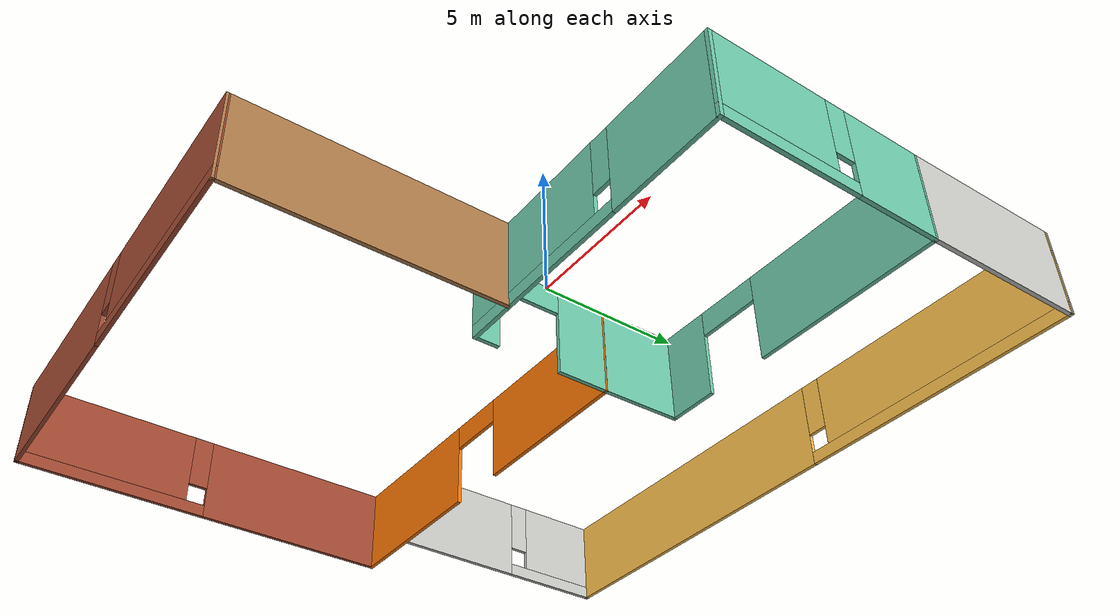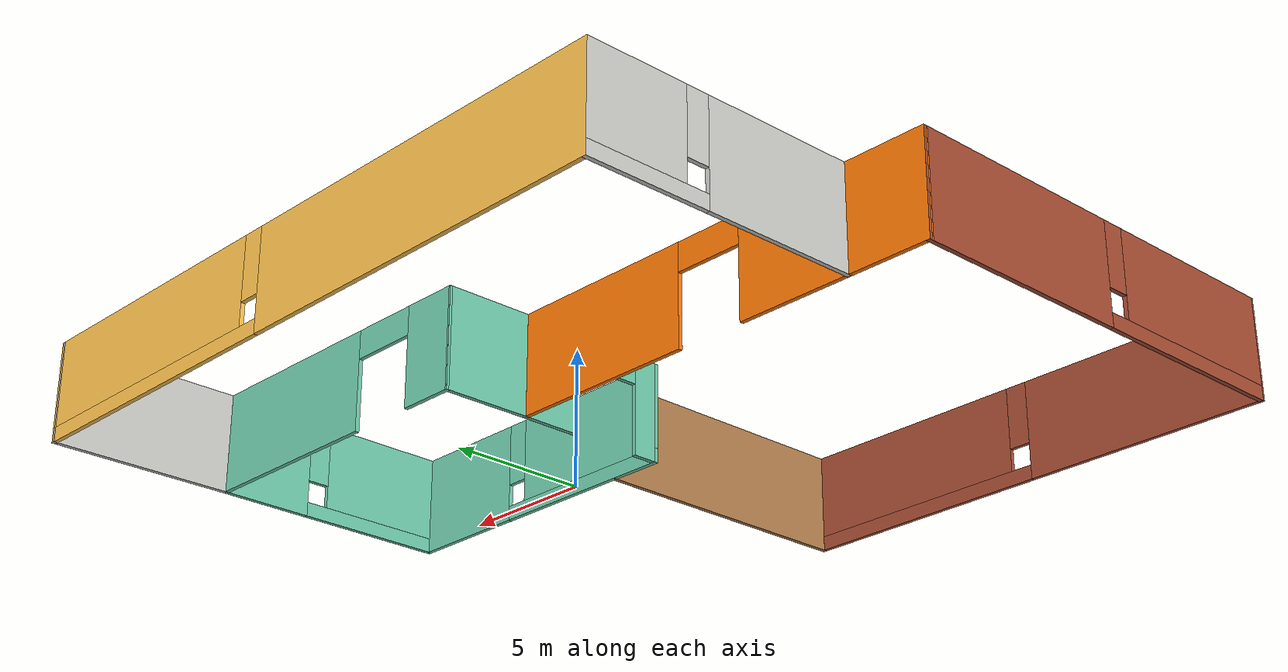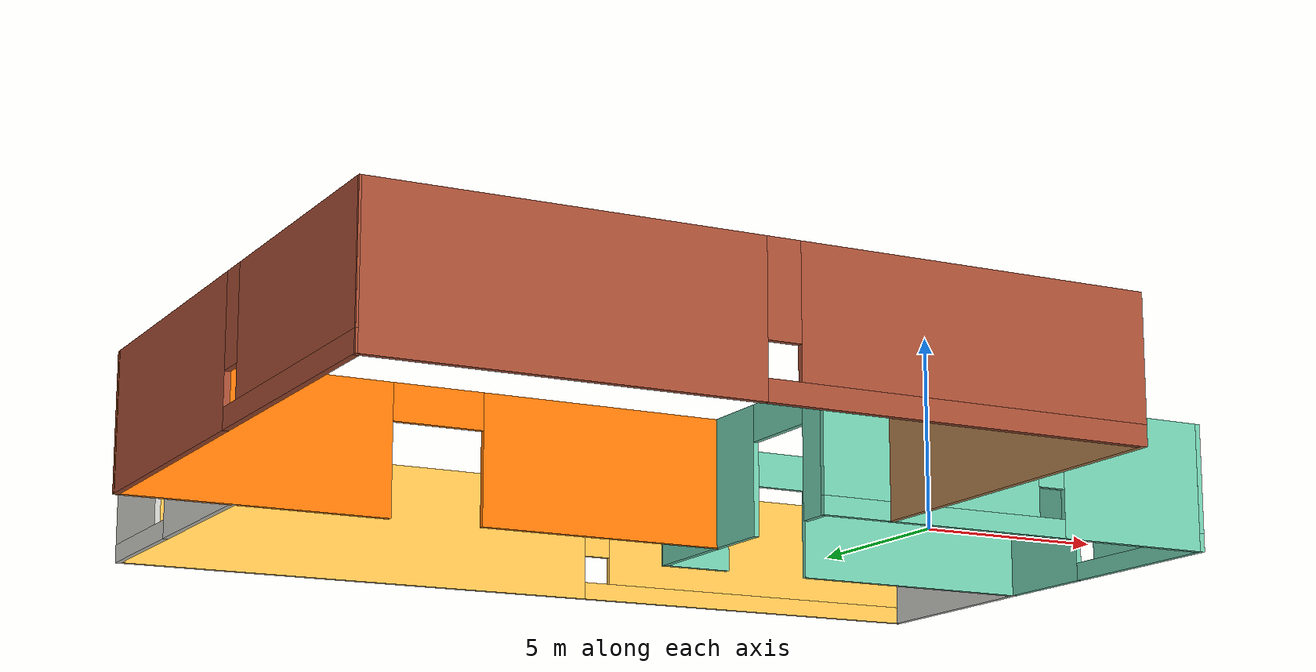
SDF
<?xml version='1.0'?>
<sdf version='1.6'>
  <model name='Building'>
    <pose frame=''>-5.64263 2.02782 0 0 -0 0</pose>
    <link name='Wall_11'>
      <pose frame=''>14.0376 1.85918 0 0 0 -1.5708</pose>
      <visual name='Wall_11_Visual_0'>
        <pose frame=''>-2.74243 0 1.75 0 -0 0</pose>
        <geometry>
          <box>
            <size>3.32963 0.15 3.5</size>
          </box>
        </geometry>
        <material>
          <script>
            <uri>file://media/materials/scripts/gazebo.material</uri>
            <name>Gazebo/Grey</name>
          </script>
          <ambient>0.435294 0.796078 0.67451 1</ambient>
        </material>
        <meta>
          <layer>0</layer>
        </meta>
      </visual>
      <collision name='Wall_11_Collision_0'>
        <geometry>
          <box>
            <size>3.32963 0.15 3.5</size>
          </box>
        </geometry>
        <pose frame=''>-2.74243 0 1.75 0 -0 0</pose>
      </collision>
      <visual name='Wall_11_Visual_1'>
        <pose frame=''>1.66481 0 0.25 0 -0 0</pose>
        <geometry>
          <box>
            <size>5.48487 0.15 0.5</size>
          </box>
        </geometry>
        <material>
          <script>
            <uri>file://media/materials/scripts/gazebo.material</uri>
            <name>Gazebo/Grey</name>
          </script>
          <ambient>0.435294 0.796078 0.67451 1</ambient>
        </material>
        <meta>
          <layer>0</layer>
        </meta>
      </visual>
      <collision name='Wall_11_Collision_1'>
        <geometry>
          <box>
            <size>5.48487 0.15 0.5</size>
          </box>
        </geometry>
        <pose frame=''>1.66481 0 0.25 0 -0 0</pose>
      </collision>
      <visual name='Wall_11_Visual_2'>
        <pose frame=''>2.06481 0 2 0 -0 0</pose>
        <geometry>
          <box>
            <size>4.68487 0.15 3</size>
          </box>
        </geometry>
        <material>
          <script>
            <uri>file://media/materials/scripts/gazebo.material</uri>
            <name>Gazebo/Grey</name>
          </script>
          <ambient>0.435294 0.796078 0.67451 1</ambient>
        </material>
        <meta>
          <layer>0</layer>
        </meta>
      </visual>
      <collision name='Wall_11_Collision_2'>
        <geometry>
          <box>
            <size>4.68487 0.15 3</size>
          </box>
        </geometry>
        <pose frame=''>2.06481 0 2 0 -0 0</pose>
      </collision>
      <visual name='Wall_11_Visual_3'>
        <pose frame=''>-0.677619 0 2.4 0 -0 0</pose>
        <geometry>
          <box>
            <size>0.8 0.15 2.2</size>
          </box>
        </geometry>
        <material>
          <script>
            <uri>file://media/materials/scripts/gazebo.material</uri>
            <name>Gazebo/Grey</name>
          </script>
          <ambient>0.435294 0.796078 0.67451 1</ambient>
        </material>
        <meta>
          <layer>0</layer>
        </meta>
      </visual>
      <collision name='Wall_11_Collision_3'>
        <geometry>
          <box>
            <size>0.8 0.15 2.2</size>
          </box>
        </geometry>
        <pose frame=''>-0.677619 0 2.4 0 -0 0</pose>
      </collision>
    </link>
    <link name='Wall_12'>
      <pose frame=''>8.15813 -2.47282 0 0 -0 3.14159</pose>
      <visual name='Wall_12_Visual_0'>
        <pose frame=''>-3.67134 0 1.75 0 -0 0</pose>
        <geometry>
          <box>
            <size>4.56647 0.15 3.5</size>
          </box>
        </geometry>
        <material>
          <script>
            <uri>file://media/materials/scripts/gazebo.material</uri>
            <name>Gazebo/Grey</name>
          </script>
          <ambient>0.435294 0.796078 0.67451 1</ambient>
        </material>
        <meta>
          <layer>0</layer>
        </meta>
      </visual>
      <collision name='Wall_12_Collision_0'>
        <geometry>
          <box>
            <size>4.56647 0.15 3.5</size>
          </box>
        </geometry>
        <pose frame=''>-3.67134 0 1.75 0 -0 0</pose>
      </collision>
      <visual name='Wall_12_Visual_1'>
        <pose frame=''>2.28324 0 0.25 0 -0 0</pose>
        <geometry>
          <box>
            <size>7.34269 0.15 0.5</size>
          </box>
        </geometry>
        <material>
          <script>
            <uri>file://media/materials/scripts/gazebo.material</uri>
            <name>Gazebo/Grey</name>
          </script>
          <ambient>0.435294 0.796078 0.67451 1</ambient>
        </material>
        <meta>
          <layer>0</layer>
        </meta>
      </visual>
      <collision name='Wall_12_Collision_1'>
        <geometry>
          <box>
            <size>7.34269 0.15 0.5</size>
          </box>
        </geometry>
        <pose frame=''>2.28324 0 0.25 0 -0 0</pose>
      </collision>
      <visual name='Wall_12_Visual_2'>
        <pose frame=''>2.68324 0 2 0 -0 0</pose>
        <geometry>
          <box>
            <size>6.54269 0.15 3</size>
          </box>
        </geometry>
        <material>
          <script>
            <uri>file://media/materials/scripts/gazebo.material</uri>
            <name>Gazebo/Grey</name>
          </script>
          <ambient>0.435294 0.796078 0.67451 1</ambient>
        </material>
        <meta>
          <layer>0</layer>
        </meta>
      </visual>
      <collision name='Wall_12_Collision_2'>
        <geometry>
          <box>
            <size>6.54269 0.15 3</size>
          </box>
        </geometry>
        <pose frame=''>2.68324 0 2 0 -0 0</pose>
      </collision>
      <visual name='Wall_12_Visual_3'>
        <pose frame=''>-0.988107 0 2.4 0 -0 0</pose>
        <geometry>
          <box>
            <size>0.8 0.15 2.2</size>
          </box>
        </geometry>
        <material>
          <script>
            <uri>file://media/materials/scripts/gazebo.material</uri>
            <name>Gazebo/Grey</name>
          </script>
          <ambient>0.435294 0.796078 0.67451 1</ambient>
        </material>
        <meta>
          <layer>0</layer>
        </meta>
      </visual>
      <collision name='Wall_12_Collision_3'>
        <geometry>
          <box>
            <size>0.8 0.15 2.2</size>
          </box>
        </geometry>
        <pose frame=''>-0.988107 0 2.4 0 -0 0</pose>
      </collision>
    </link>
    <link name='Wall_14'>
      <collision name='Wall_14_Collision'>
        <geometry>
          <box>
            <size>10.2635 0.15 3.5</size>
          </box>
        </geometry>
        <pose frame=''>0 0 1.75 0 -0 0</pose>
      </collision>
      <visual name='Wall_14_Visual'>
        <pose frame=''>0 0 1.75 0 -0 0</pose>
        <geometry>
          <box>
            <size>10.2635 0.15 3.5</size>
          </box>
        </geometry>
        <material>
          <script>
            <uri>file://media/materials/scripts/gazebo.material</uri>
            <name>Gazebo/Wood</name>
          </script>
          <ambient>0.996078 0.47451 0.0196078 1</ambient>
        </material>
        <meta>
          <layer>0</layer>
        </meta>
      </visual>
      <pose frame=''>4.22413 -7.58082 0 0 0 -1.57248</pose>
    </link>
    <link name='Wall_16'>
      <pose frame=''>-14.0979 -4.78882 0 0 0 -1.56739</pose>
      <visual name='Wall_16_Visual_0'>
        <pose frame=''>-3.8228 0 1.75 0 -0 0</pose>
        <geometry>
          <box>
            <size>8.0561 0.15 3.5</size>
          </box>
        </geometry>
        <material>
          <script>
            <uri>file://media/materials/scripts/gazebo.material</uri>
            <name>Gazebo/Bricks</name>
          </script>
          <ambient>0.996078 0.47451 0.0196078 1</ambient>
        </material>
        <meta>
          <layer>0</layer>
        </meta>
      </visual>
      <collision name='Wall_16_Collision_0'>
        <geometry>
          <box>
            <size>8.0561 0.15 3.5</size>
          </box>
        </geometry>
        <pose frame=''>-3.8228 0 1.75 0 -0 0</pose>
      </collision>
      <visual name='Wall_16_Visual_1'>
        <pose frame=''>4.02805 0 0.25 0 -0 0</pose>
        <geometry>
          <box>
            <size>7.6456 0.15 0.5</size>
          </box>
        </geometry>
        <material>
          <script>
            <uri>file://media/materials/scripts/gazebo.material</uri>
            <name>Gazebo/Bricks</name>
          </script>
          <ambient>0.996078 0.47451 0.0196078 1</ambient>
        </material>
        <meta>
          <layer>0</layer>
        </meta>
      </visual>
      <collision name='Wall_16_Collision_1'>
        <geometry>
          <box>
            <size>7.6456 0.15 0.5</size>
          </box>
        </geometry>
        <pose frame=''>4.02805 0 0.25 0 -0 0</pose>
      </collision>
      <visual name='Wall_16_Visual_2'>
        <pose frame=''>4.42805 0 2 0 -0 0</pose>
        <geometry>
          <box>
            <size>6.8456 0.15 3</size>
          </box>
        </geometry>
        <material>
          <script>
            <uri>file://media/materials/scripts/gazebo.material</uri>
            <name>Gazebo/Bricks</name>
          </script>
          <ambient>0.996078 0.47451 0.0196078 1</ambient>
        </material>
        <meta>
          <layer>0</layer>
        </meta>
      </visual>
      <collision name='Wall_16_Collision_2'>
        <geometry>
          <box>
            <size>6.8456 0.15 3</size>
          </box>
        </geometry>
        <pose frame=''>4.42805 0 2 0 -0 0</pose>
      </collision>
      <visual name='Wall_16_Visual_3'>
        <pose frame=''>0.605252 0 2.4 0 -0 0</pose>
        <geometry>
          <box>
            <size>0.8 0.15 2.2</size>
          </box>
        </geometry>
        <material>
          <script>
            <uri>file://media/materials/scripts/gazebo.material</uri>
            <name>Gazebo/Bricks</name>
          </script>
          <ambient>0.996078 0.47451 0.0196078 1</ambient>
        </material>
        <meta>
          <layer>0</layer>
        </meta>
      </visual>
      <collision name='Wall_16_Collision_3'>
        <geometry>
          <box>
            <size>0.8 0.15 2.2</size>
          </box>
        </geometry>
        <pose frame=''>0.605252 0 2.4 0 -0 0</pose>
      </collision>
    </link>
    <link name='Wall_17'>
      <pose frame=''>-4.92787 -12.6013 0 0 0 -0.003992</pose>
      <visual name='Wall_17_Visual_0'>
        <pose frame=''>-4.76402 0 1.75 0 -0 0</pose>
        <geometry>
          <box>
            <size>8.909 0.15 3.5</size>
          </box>
        </geometry>
        <material>
          <script>
            <uri>file://media/materials/scripts/gazebo.material</uri>
            <name>Gazebo/Bricks</name>
          </script>
          <ambient>0.996078 0.47451 0.0196078 1</ambient>
        </material>
        <meta>
          <layer>0</layer>
        </meta>
      </visual>
      <collision name='Wall_17_Collision_0'>
        <geometry>
          <box>
            <size>8.909 0.15 3.5</size>
          </box>
        </geometry>
        <pose frame=''>-4.76402 0 1.75 0 -0 0</pose>
      </collision>
      <visual name='Wall_17_Visual_1'>
        <pose frame=''>4.4545 0 0.25 0 -0 0</pose>
        <geometry>
          <box>
            <size>9.52804 0.15 0.5</size>
          </box>
        </geometry>
        <material>
          <script>
            <uri>file://media/materials/scripts/gazebo.material</uri>
            <name>Gazebo/Bricks</name>
          </script>
          <ambient>0.996078 0.47451 0.0196078 1</ambient>
        </material>
        <meta>
          <layer>0</layer>
        </meta>
      </visual>
      <collision name='Wall_17_Collision_1'>
        <geometry>
          <box>
            <size>9.52804 0.15 0.5</size>
          </box>
        </geometry>
        <pose frame=''>4.4545 0 0.25 0 -0 0</pose>
      </collision>
      <visual name='Wall_17_Visual_2'>
        <pose frame=''>4.8545 0 2 0 -0 0</pose>
        <geometry>
          <box>
            <size>8.72804 0.15 3</size>
          </box>
        </geometry>
        <material>
          <script>
            <uri>file://media/materials/scripts/gazebo.material</uri>
            <name>Gazebo/Bricks</name>
          </script>
          <ambient>0.996078 0.47451 0.0196078 1</ambient>
        </material>
        <meta>
          <layer>0</layer>
        </meta>
      </visual>
      <collision name='Wall_17_Collision_2'>
        <geometry>
          <box>
            <size>8.72804 0.15 3</size>
          </box>
        </geometry>
        <pose frame=''>4.8545 0 2 0 -0 0</pose>
      </collision>
      <visual name='Wall_17_Visual_3'>
        <pose frame=''>0.090482 0 2.4 0 -0 0</pose>
        <geometry>
          <box>
            <size>0.8 0.15 2.2</size>
          </box>
        </geometry>
        <material>
          <script>
            <uri>file://media/materials/scripts/gazebo.material</uri>
            <name>Gazebo/Bricks</name>
          </script>
          <ambient>0.996078 0.47451 0.0196078 1</ambient>
        </material>
        <meta>
          <layer>0</layer>
        </meta>
      </visual>
      <collision name='Wall_17_Collision_3'>
        <geometry>
          <box>
            <size>0.8 0.15 2.2</size>
          </box>
        </geometry>
        <pose frame=''>0.090482 0 2.4 0 -0 0</pose>
      </collision>
    </link>
    <link name='Wall_19'>
      <pose frame=''>-11.2264 7.83718 0 0 -0 1.5708</pose>
      <visual name='Wall_19_Visual_0'>
        <pose frame=''>-2.16282 0 1.75 0 -0 0</pose>
        <geometry>
          <box>
            <size>5.42436 0.15 3.5</size>
          </box>
        </geometry>
        <material>
          <script>
            <uri>file://media/materials/scripts/gazebo.material</uri>
            <name>Gazebo/CeilingTiled</name>
          </script>
          <ambient>1 0.764706 0.305882 1</ambient>
        </material>
        <meta>
          <layer>0</layer>
        </meta>
      </visual>
      <collision name='Wall_19_Collision_0'>
        <geometry>
          <box>
            <size>5.42436 0.15 3.5</size>
          </box>
        </geometry>
        <pose frame=''>-2.16282 0 1.75 0 -0 0</pose>
      </collision>
      <visual name='Wall_19_Visual_1'>
        <pose frame=''>2.71218 0 0.25 0 -0 0</pose>
        <geometry>
          <box>
            <size>4.32564 0.15 0.5</size>
          </box>
        </geometry>
        <material>
          <script>
            <uri>file://media/materials/scripts/gazebo.material</uri>
            <name>Gazebo/CeilingTiled</name>
          </script>
          <ambient>1 0.764706 0.305882 1</ambient>
        </material>
        <meta>
          <layer>0</layer>
        </meta>
      </visual>
      <collision name='Wall_19_Collision_1'>
        <geometry>
          <box>
            <size>4.32564 0.15 0.5</size>
          </box>
        </geometry>
        <pose frame=''>2.71218 0 0.25 0 -0 0</pose>
      </collision>
      <visual name='Wall_19_Visual_2'>
        <pose frame=''>3.11218 0 2 0 -0 0</pose>
        <geometry>
          <box>
            <size>3.52564 0.15 3</size>
          </box>
        </geometry>
        <material>
          <script>
            <uri>file://media/materials/scripts/gazebo.material</uri>
            <name>Gazebo/CeilingTiled</name>
          </script>
          <ambient>1 0.764706 0.305882 1</ambient>
        </material>
        <meta>
          <layer>0</layer>
        </meta>
      </visual>
      <collision name='Wall_19_Collision_2'>
        <geometry>
          <box>
            <size>3.52564 0.15 3</size>
          </box>
        </geometry>
        <pose frame=''>3.11218 0 2 0 -0 0</pose>
      </collision>
      <visual name='Wall_19_Visual_3'>
        <pose frame=''>0.949362 0 2.4 0 -0 0</pose>
        <geometry>
          <box>
            <size>0.8 0.15 2.2</size>
          </box>
        </geometry>
        <material>
          <script>
            <uri>file://media/materials/scripts/gazebo.material</uri>
            <name>Gazebo/CeilingTiled</name>
          </script>
          <ambient>1 0.764706 0.305882 1</ambient>
        </material>
        <meta>
          <layer>0</layer>
        </meta>
      </visual>
      <collision name='Wall_19_Collision_3'>
        <geometry>
          <box>
            <size>0.8 0.15 2.2</size>
          </box>
        </geometry>
        <pose frame=''>0.949362 0 2.4 0 -0 0</pose>
      </collision>
    </link>
    <link name='Wall_20'>
      <pose frame=''>1.44863 12.6372 0 0 -0 0</pose>
      <visual name='Wall_20_Visual_0'>
        <pose frame=''>-5.59643 0 1.75 0 -0 0</pose>
        <geometry>
          <box>
            <size>14.3071 0.15 3.5</size>
          </box>
        </geometry>
        <material>
          <script>
            <uri>file://media/materials/scripts/gazebo.material</uri>
            <name>Gazebo/Grey</name>
          </script>
          <ambient>1 0.764706 0.305882 1</ambient>
        </material>
        <meta>
          <layer>0</layer>
        </meta>
      </visual>
      <collision name='Wall_20_Collision_0'>
        <geometry>
          <box>
            <size>14.3071 0.15 3.5</size>
          </box>
        </geometry>
        <pose frame=''>-5.59643 0 1.75 0 -0 0</pose>
      </collision>
      <visual name='Wall_20_Visual_1'>
        <pose frame=''>7.15357 0 0.25 0 -0 0</pose>
        <geometry>
          <box>
            <size>11.1929 0.15 0.5</size>
          </box>
        </geometry>
        <material>
          <script>
            <uri>file://media/materials/scripts/gazebo.material</uri>
            <name>Gazebo/Grey</name>
          </script>
          <ambient>1 0.764706 0.305882 1</ambient>
        </material>
        <meta>
          <layer>0</layer>
        </meta>
      </visual>
      <collision name='Wall_20_Collision_1'>
        <geometry>
          <box>
            <size>11.1929 0.15 0.5</size>
          </box>
        </geometry>
        <pose frame=''>7.15357 0 0.25 0 -0 0</pose>
      </collision>
      <visual name='Wall_20_Visual_2'>
        <pose frame=''>7.55357 0 2 0 -0 0</pose>
        <geometry>
          <box>
            <size>10.3929 0.15 3</size>
          </box>
        </geometry>
        <material>
          <script>
            <uri>file://media/materials/scripts/gazebo.material</uri>
            <name>Gazebo/Grey</name>
          </script>
          <ambient>1 0.764706 0.305882 1</ambient>
        </material>
        <meta>
          <layer>0</layer>
        </meta>
      </visual>
      <collision name='Wall_20_Collision_2'>
        <geometry>
          <box>
            <size>10.3929 0.15 3</size>
          </box>
        </geometry>
        <pose frame=''>7.55357 0 2 0 -0 0</pose>
      </collision>
      <visual name='Wall_20_Visual_3'>
        <pose frame=''>1.95713 0 2.4 0 -0 0</pose>
        <geometry>
          <box>
            <size>0.8 0.15 2.2</size>
          </box>
        </geometry>
        <material>
          <script>
            <uri>file://media/materials/scripts/gazebo.material</uri>
            <name>Gazebo/Grey</name>
          </script>
          <ambient>1 0.764706 0.305882 1</ambient>
        </material>
        <meta>
          <layer>0</layer>
        </meta>
      </visual>
      <collision name='Wall_20_Collision_3'>
        <geometry>
          <box>
            <size>0.8 0.15 2.2</size>
          </box>
        </geometry>
        <pose frame=''>1.95713 0 2.4 0 -0 0</pose>
      </collision>
    </link>
    <link name='Wall_21'>
      <collision name='Wall_21_Collision'>
        <geometry>
          <box>
            <size>6.59647 0.15 3.5</size>
          </box>
        </geometry>
        <pose frame=''>0 0 1.75 0 -0 0</pose>
      </collision>
      <visual name='Wall_21_Visual'>
        <pose frame=''>0 0 1.75 0 -0 0</pose>
        <geometry>
          <box>
            <size>6.59647 0.15 3.5</size>
          </box>
        </geometry>
        <material>
          <script>
            <uri>file://media/materials/scripts/gazebo.material</uri>
            <name>Gazebo/CeilingTiled</name>
          </script>
          <ambient>1 0.764706 0.305882 1</ambient>
        </material>
        <meta>
          <layer>0</layer>
        </meta>
      </visual>
      <pose frame=''>14.0806 9.41418 0 0 0 -1.58414</pose>
    </link>
    <link name='Wall_5'>
      <pose frame=''>-5.92287 3.00718 0 0 -0 0.002439</pose>
      <visual name='Wall_5_Visual_0'>
        <pose frame=''>-4.73677 0 1.75 0 -0 0</pose>
        <geometry>
          <box>
            <size>7.07951 0.15 3.5</size>
          </box>
        </geometry>
        <material>
          <script>
            <uri>file://media/materials/scripts/gazebo.material</uri>
            <name>Gazebo/Grey</name>
          </script>
          <ambient>0.996078 0.47451 0.0196078 1</ambient>
        </material>
        <meta>
          <layer>0</layer>
        </meta>
      </visual>
      <collision name='Wall_5_Collision_0'>
        <geometry>
          <box>
            <size>7.07951 0.15 3.5</size>
          </box>
        </geometry>
        <pose frame=''>-4.73677 0 1.75 0 -0 0</pose>
      </collision>
      <visual name='Wall_5_Visual_1'>
        <pose frame=''>4.78975 0 1.75 0 -0 0</pose>
        <geometry>
          <box>
            <size>6.97354 0.15 3.5</size>
          </box>
        </geometry>
        <material>
          <script>
            <uri>file://media/materials/scripts/gazebo.material</uri>
            <name>Gazebo/Grey</name>
          </script>
          <ambient>0.996078 0.47451 0.0196078 1</ambient>
        </material>
        <meta>
          <layer>0</layer>
        </meta>
      </visual>
      <collision name='Wall_5_Collision_1'>
        <geometry>
          <box>
            <size>6.97354 0.15 3.5</size>
          </box>
        </geometry>
        <pose frame=''>4.78975 0 1.75 0 -0 0</pose>
      </collision>
      <visual name='Wall_5_Visual_2'>
        <pose frame=''>0.052984 0 3 0 -0 0</pose>
        <geometry>
          <box>
            <size>2.5 0.15 1</size>
          </box>
        </geometry>
        <material>
          <script>
            <uri>file://media/materials/scripts/gazebo.material</uri>
            <name>Gazebo/Grey</name>
          </script>
          <ambient>0.996078 0.47451 0.0196078 1</ambient>
        </material>
        <meta>
          <layer>0</layer>
        </meta>
      </visual>
      <collision name='Wall_5_Collision_2'>
        <geometry>
          <box>
            <size>2.5 0.15 1</size>
          </box>
        </geometry>
        <pose frame=''>0.052984 0 3 0 -0 0</pose>
      </collision>
    </link>
    <link name='Wall_6'>
      <pose frame=''>2.27863 0.352177 0 0 0 -1.5708</pose>
      <visual name='Wall_6_Visual_0'>
        <pose frame=''>-1.6795 0 1.75 0 -0 0</pose>
        <geometry>
          <box>
            <size>2.141 0.15 3.5</size>
          </box>
        </geometry>
        <material>
          <script>
            <uri>file://media/materials/scripts/gazebo.material</uri>
            <name>Gazebo/Grey</name>
          </script>
          <ambient>0.435294 0.796078 0.67451 1</ambient>
        </material>
        <meta>
          <layer>0</layer>
        </meta>
      </visual>
      <collision name='Wall_6_Collision_0'>
        <geometry>
          <box>
            <size>2.141 0.15 3.5</size>
          </box>
        </geometry>
        <pose frame=''>-1.6795 0 1.75 0 -0 0</pose>
      </collision>
      <visual name='Wall_6_Visual_1'>
        <pose frame=''>2.3205 0 1.75 0 -0 0</pose>
        <geometry>
          <box>
            <size>0.859005 0.15 3.5</size>
          </box>
        </geometry>
        <material>
          <script>
            <uri>file://media/materials/scripts/gazebo.material</uri>
            <name>Gazebo/Grey</name>
          </script>
          <ambient>0.435294 0.796078 0.67451 1</ambient>
        </material>
        <meta>
          <layer>0</layer>
        </meta>
      </visual>
      <collision name='Wall_6_Collision_1'>
        <geometry>
          <box>
            <size>0.859005 0.15 3.5</size>
          </box>
        </geometry>
        <pose frame=''>2.3205 0 1.75 0 -0 0</pose>
      </collision>
      <visual name='Wall_6_Visual_2'>
        <pose frame=''>0.640995 0 3 0 -0 0</pose>
        <geometry>
          <box>
            <size>2.5 0.15 1</size>
          </box>
        </geometry>
        <material>
          <script>
            <uri>file://media/materials/scripts/gazebo.material</uri>
            <name>Gazebo/Grey</name>
          </script>
          <ambient>0.435294 0.796078 0.67451 1</ambient>
        </material>
        <meta>
          <layer>0</layer>
        </meta>
      </visual>
      <collision name='Wall_6_Collision_2'>
        <geometry>
          <box>
            <size>2.5 0.15 1</size>
          </box>
        </geometry>
        <pose frame=''>0.640995 0 3 0 -0 0</pose>
      </collision>
    </link>
    <link name='Wall_8'>
      <collision name='Wall_8_Collision'>
        <geometry>
          <box>
            <size>3.26826 0.15 3.5</size>
          </box>
        </geometry>
        <pose frame=''>0 0 1.75 0 -0 0</pose>
      </collision>
      <visual name='Wall_8_Visual'>
        <pose frame=''>0 0 1.75 0 -0 0</pose>
        <geometry>
          <box>
            <size>3.26826 0.15 3.5</size>
          </box>
        </geometry>
        <material>
          <script>
            <uri>file://media/materials/scripts/gazebo.material</uri>
            <name>Gazebo/Grey</name>
          </script>
          <ambient>0.435294 0.796078 0.67451 1</ambient>
        </material>
        <meta>
          <layer>0</layer>
        </meta>
      </visual>
      <pose frame=''>2.30213 4.58618 0 0 -0 1.55572</pose>
    </link>
    <link name='Wall_9'>
      <pose frame=''>8.18163 6.16818 0 0 -0 0.003928</pose>
      <visual name='Wall_9_Visual_0'>
        <pose frame=''>-4.90179 0 1.75 0 -0 0</pose>
        <geometry>
          <box>
            <size>2.05906 0.15 3.5</size>
          </box>
        </geometry>
        <material>
          <script>
            <uri>file://media/materials/scripts/gazebo.material</uri>
            <name>Gazebo/Grey</name>
          </script>
          <ambient>0.435294 0.796078 0.67451 1</ambient>
        </material>
        <meta>
          <layer>0</layer>
        </meta>
      </visual>
      <collision name='Wall_9_Collision_0'>
        <geometry>
          <box>
            <size>2.05906 0.15 3.5</size>
          </box>
        </geometry>
        <pose frame=''>-4.90179 0 1.75 0 -0 0</pose>
      </collision>
      <visual name='Wall_9_Visual_1'>
        <pose frame=''>2.27953 0 1.75 0 -0 0</pose>
        <geometry>
          <box>
            <size>7.30357 0.15 3.5</size>
          </box>
        </geometry>
        <material>
          <script>
            <uri>file://media/materials/scripts/gazebo.material</uri>
            <name>Gazebo/Grey</name>
          </script>
          <ambient>0.435294 0.796078 0.67451 1</ambient>
        </material>
        <meta>
          <layer>0</layer>
        </meta>
      </visual>
      <collision name='Wall_9_Collision_1'>
        <geometry>
          <box>
            <size>7.30357 0.15 3.5</size>
          </box>
        </geometry>
        <pose frame=''>2.27953 0 1.75 0 -0 0</pose>
      </collision>
      <visual name='Wall_9_Visual_2'>
        <pose frame=''>-2.62226 0 3 0 -0 0</pose>
        <geometry>
          <box>
            <size>2.5 0.15 1</size>
          </box>
        </geometry>
        <material>
          <script>
            <uri>file://media/materials/scripts/gazebo.material</uri>
            <name>Gazebo/Grey</name>
          </script>
          <ambient>0.435294 0.796078 0.67451 1</ambient>
        </material>
        <meta>
          <layer>0</layer>
        </meta>
      </visual>
      <collision name='Wall_9_Collision_2'>
        <geometry>
          <box>
            <size>2.5 0.15 1</size>
          </box>
        </geometry>
        <pose frame=''>-2.62226 0 3 0 -0 0</pose>
      </collision>
    </link>
    <static>1</static>
  </model>
</sdf>
